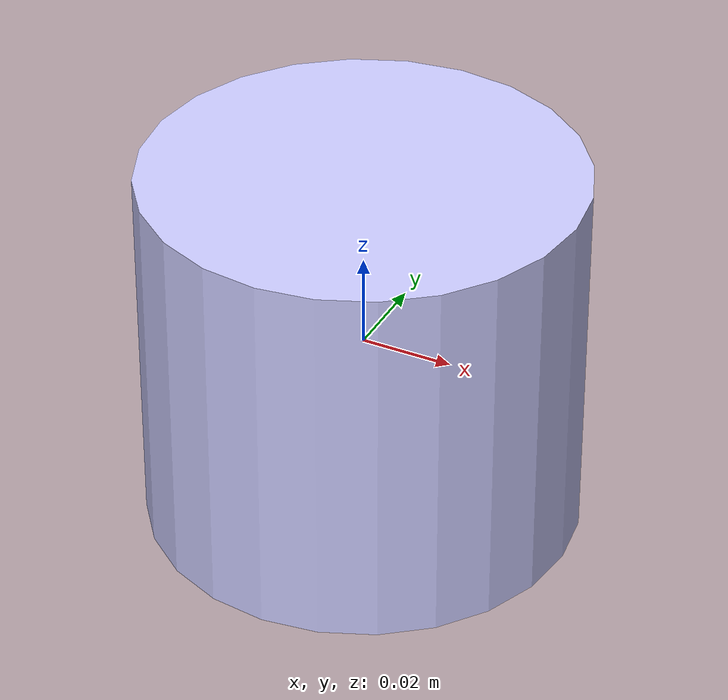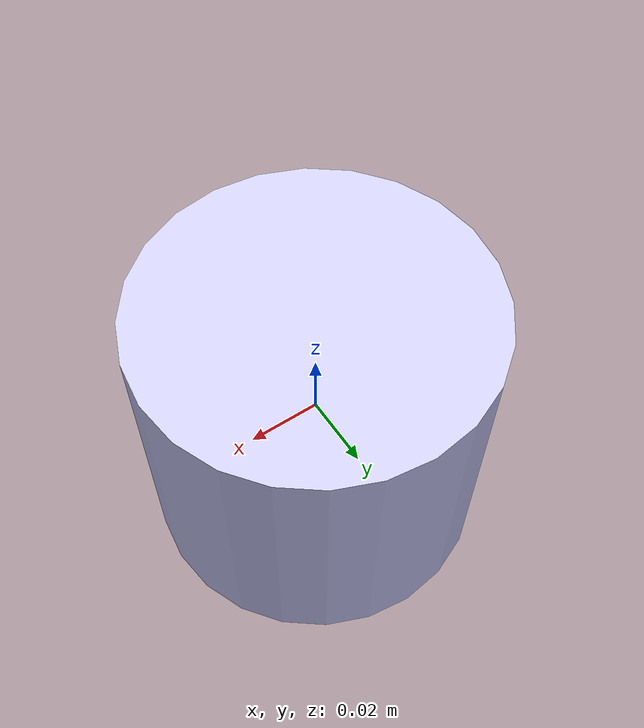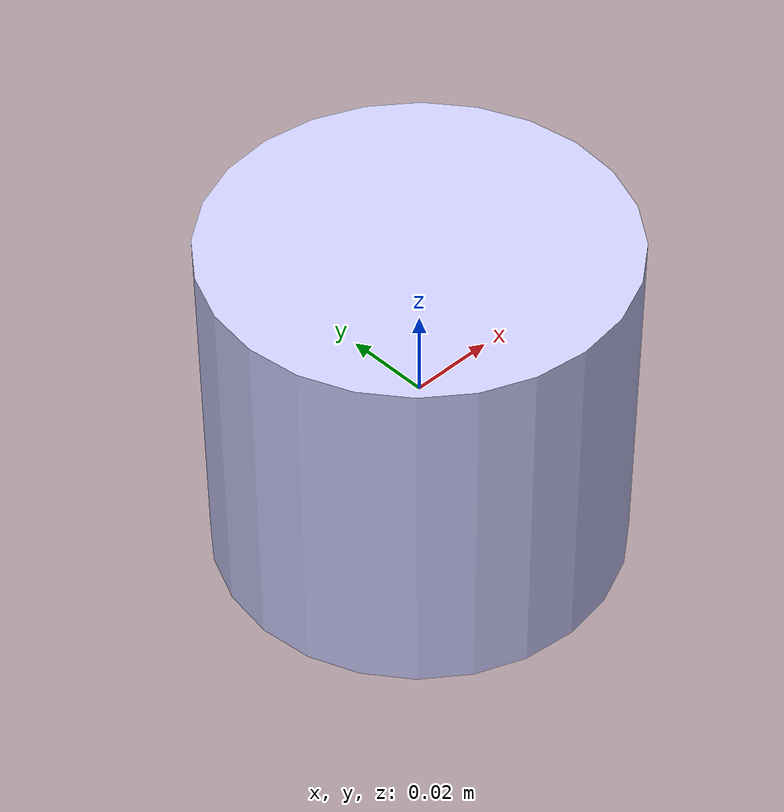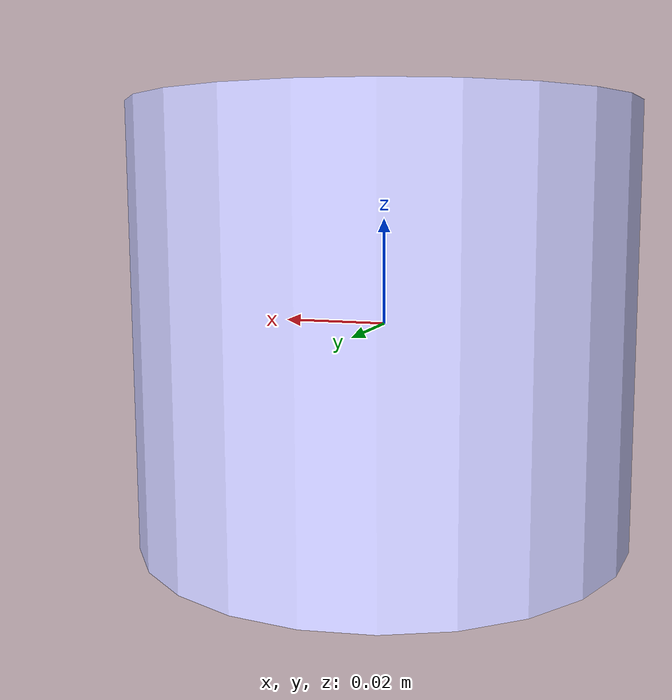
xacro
<?xml version="1.0" ?>
<robot name="hole" xmlns:xacro="http://ros.org/wiki/xacro">
  <material name="plate">
    <color rgba="0.8 0.8 1"/>
  </material>
  <link name="hole_link">
    <visual>
      <geometry>
        <cylinder length="0.082" radius="0.047"/>
      </geometry>
      <material name="plate"/>
    </visual>
  </link>
</robot>
